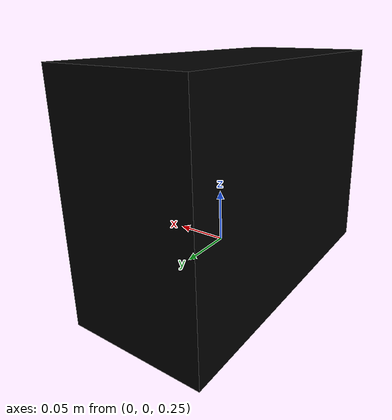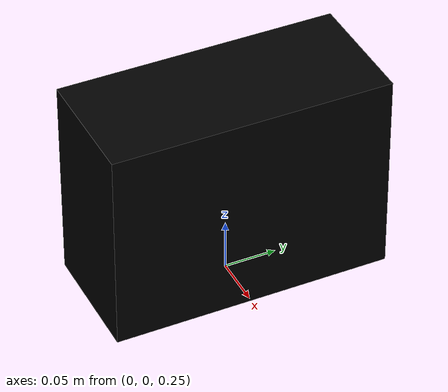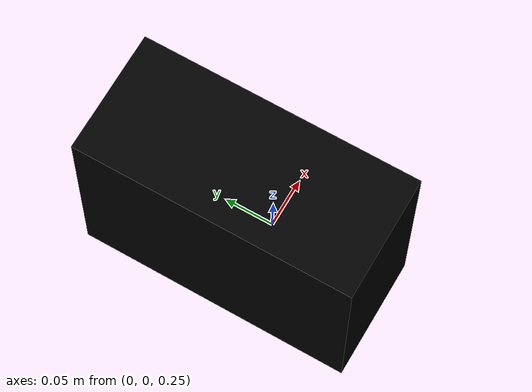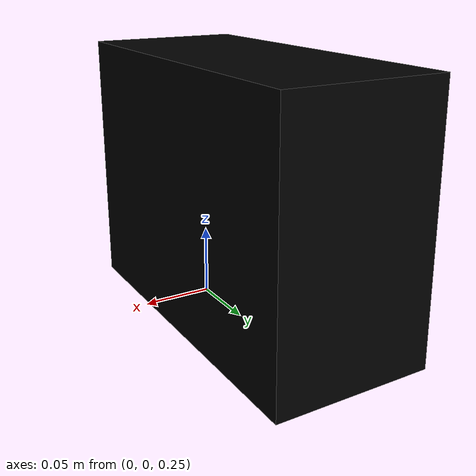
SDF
<?xml version='1.0'?>
<sdf version='1.7'>
  <model name='my_box'>
  <static>false</static>
    <link name='link'>
      <inertial>
        <mass>0.2</mass>
        <inertia>
          <ixx>0.00133333</ixx>
          <iyy>0.00133333</iyy>
          <izz>0.00133333</izz>
          <ixy>0</ixy>
          <ixz>0</ixz>
          <iyz>0</iyz>
        </inertia>
        <pose>0 0 0 0 -0 0</pose>
      </inertial>
      <self_collide>0</self_collide>
      <enable_wind>0</enable_wind>
      <kinematic>0</kinematic>
      <pose>-0.027475 0.012795 0.33 0 -0 0</pose>
      <gravity>1</gravity>
      <visual name='visual'>
        <geometry>
          <box>
            <size>0.12 0.27 0.2</size>
          </box>
        </geometry>
        <material>
          <shader type='pixel'>
            <normal_map>__default__</normal_map>
          </shader>
          <script>
            <name>ModelPreview_1::link::visual_MATERIAL_</name>
          </script>
          <ambient>0 0 0 1</ambient>
          <diffuse>0 0 0 1</diffuse>
          <specular>0 0 0 1</specular>
          <emissive>0 0 0 1</emissive>
        </material>
        <pose>0 0 0 0 -0 0</pose>
        <transparency>0</transparency>
        <cast_shadows>1</cast_shadows>
      </visual>

    </link>
    <static>0</static>
    <allow_auto_disable>1</allow_auto_disable>
  </model>
</sdf>
